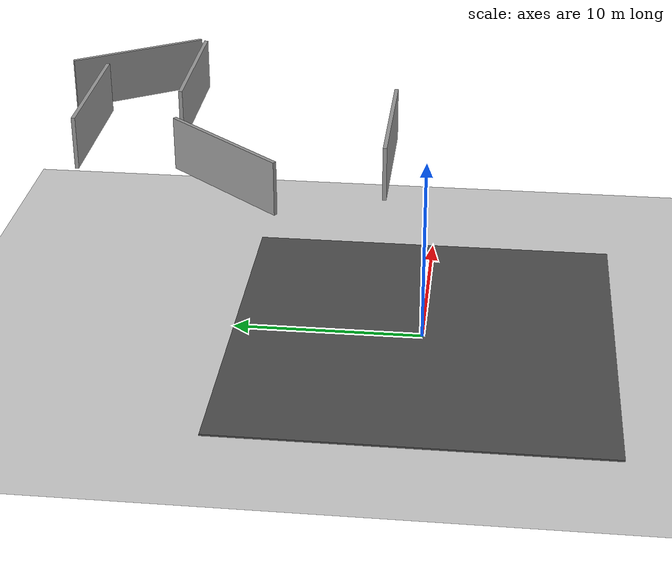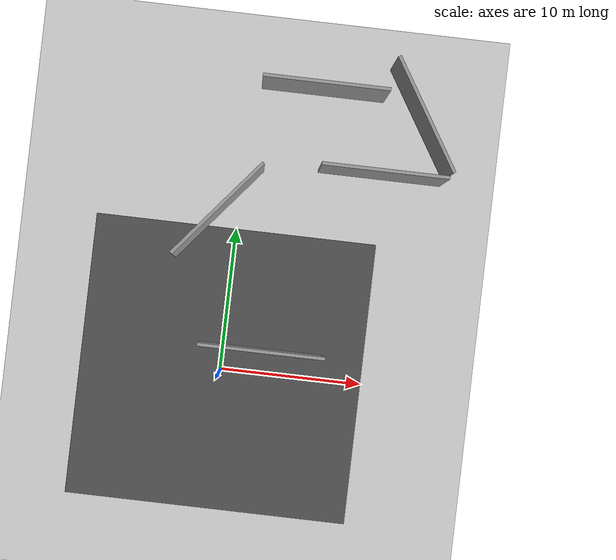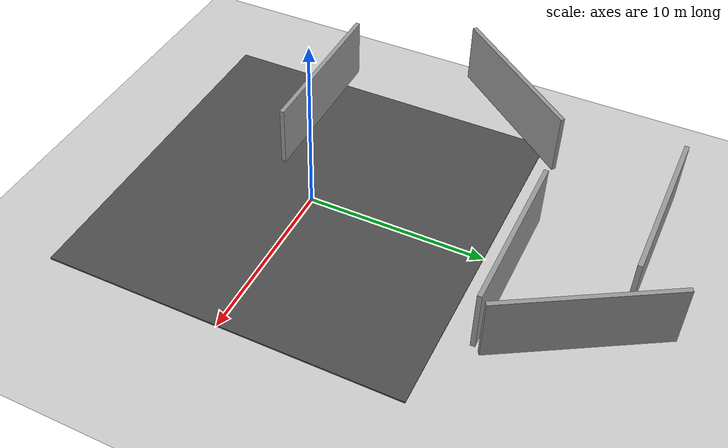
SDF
<sdf version="1.7">
 <world name="default">
  <light name="sun" type="directional">
   <pose>0 0 10 0 -0 0</pose>
   <diffuse>0.8 0.8 0.8 1</diffuse>
   <specular>0.2 0.2 0.2 1</specular>
   <attenuation>
    <range>1000</range>
    <constant>0.9</constant>
    <linear>0.01</linear>
    <quadratic>0.001</quadratic>
   </attenuation>
   <direction>-0.5 0.1 -0.9</direction>
   <spot><inner_angle>0</inner_angle><outer_angle>0</outer_angle><falloff>0</falloff></spot>
  </light>
  <model name="ground_plane">
   <static>1</static>
   <link name="link">
    <collision name="collision">
     <geometry><plane><normal>0 0 1</normal><size>100 100</size></plane></geometry>
     <surface>
      <contact><collide_bitmask>65535</collide_bitmask></contact>
      <friction><ode><mu>100</mu><mu2>50</mu2></ode></friction>
     </surface>
    </collision>
    <visual name="visual">
     <cast_shadows>0</cast_shadows>
     <geometry><plane><normal>0 0 1</normal><size>100 100</size></plane></geometry>
     <material>
      <script><uri>file://media/materials/scripts/gazebo.material</uri><name>Gazebo/Grey</name></script>
     </material>
    </visual>
   </link>
  </model>
  <model name="asphalt_plane">
   <static>1</static>
   <link name="link">
    <collision name="collision"><geometry><box><size>20 20 0.1</size></box></geometry></collision>
    <visual name="visual">
     <cast_shadows>0</cast_shadows>
     <geometry><box><size>20 20 0.1</size></box></geometry>
     <material>
      <script>
       <uri>model://asphalt_plane/materials/scripts</uri>
       <uri>model://asphalt_plane/materials/textures</uri>
       <name>vrc/asphalt</name>
      </script>
     </material>
    </visual>
   </link>
  </model>
  <physics name="default_physics" default="0" type="ode">
   <ode>
    <solver>
     <type>quick</type>
     <iters>10</iters>
     <sor>1.3</sor>
     <use_dynamic_moi_rescaling>0</use_dynamic_moi_rescaling>
    </solver>
    <constraints>
     <cfm>0</cfm>
     <erp>0.2</erp>
     <contact_max_correcting_vel>100</contact_max_correcting_vel>
     <contact_surface_layer>0.001</contact_surface_layer>
    </constraints>
   </ode>
   <max_step_size>0.004</max_step_size>
   <real_time_factor>1</real_time_factor>
   <real_time_update_rate>250</real_time_update_rate>
  </physics>
  <gravity>0 0 -9.8066</gravity>
  <magnetic_field>6e-06 2.3e-05 -4.2e-05</magnetic_field>
  <atmosphere type="adiabatic"/>
  <scene><ambient>0.4 0.4 0.4 1</ambient><background>0.7 0.7 0.7 1</background><shadows>1</shadows></scene>
  <audio><device>default</device></audio>
  <spherical_coordinates>
   <surface_model>EARTH_WGS84</surface_model>
   <latitude_deg>0</latitude_deg>
   <longitude_deg>0</longitude_deg>
   <elevation>0</elevation>
   <heading_deg>0</heading_deg>
  </spherical_coordinates>
  <model name="grey_wall">
   <static>1</static>
   <link name="link">
    <pose>0 0 1.4 0 -0 0</pose>
    <collision name="collision"><geometry><box><size>7.5 0.2 2.8</size></box></geometry></collision>
    <visual name="visual">
     <cast_shadows>0</cast_shadows>
     <geometry><box><size>7.5 0.2 2.8</size></box></geometry>
     <material>
      <script>
       <uri>model://grey_wall/materials/scripts</uri>
       <uri>model://grey_wall/materials/textures</uri>
       <name>vrc/grey_wall</name>
      </script>
     </material>
    </visual>
   </link>
   <pose>-1 10 8.5 0 -0 0.884962</pose>
  </model>
  <model name="grey_wall_0">
   <static>1</static>
   <link name="link">
    <pose>0 0 1.4 0 -0 0</pose>
    <collision name="collision"><geometry><box><size>7.5 0.2 2.8</size></box></geometry></collision>
    <visual name="visual">
     <cast_shadows>0</cast_shadows>
     <geometry><box><size>7.5 0.2 2.8</size></box></geometry>
     <material>
      <script>
       <uri>model://grey_wall/materials/scripts</uri>
       <uri>model://grey_wall/materials/textures</uri>
       <name>vrc/grey_wall</name>
      </script>
     </material>
    </visual>
   </link>
   <pose>2.5 2 8.5 0 -0 0</pose>
  </model>
  <model name="grey_wall_1">
   <static>1</static>
   <link name="link">
    <pose>0 0 1.4 0 -0 0</pose>
    <collision name="collision"><geometry><box><size>7.5 0.2 2.8</size></box></geometry></collision>
    <visual name="visual">
     <cast_shadows>0</cast_shadows>
     <geometry><box><size>7.5 0.2 2.8</size></box></geometry>
     <material>
      <script>
       <uri>model://grey_wall/materials/scripts</uri>
       <uri>model://grey_wall/materials/textures</uri>
       <name>vrc/grey_wall</name>
      </script>
     </material>
    </visual>
   </link>
   <pose>8.5 13.2877 8.5 0 -0 0</pose>
  </model>
  <model name="grey_wall_2">
   <static>1</static>
   <link name="link">
    <pose>0 0 1.4 0 -0 0</pose>
    <collision name="collision"><geometry><box><size>7.5 0.2 2.8</size></box></geometry></collision>
    <visual name="visual">
     <cast_shadows>0</cast_shadows>
     <geometry><box><size>7.5 0.2 2.8</size></box></geometry>
     <material>
      <script>
       <uri>model://grey_wall/materials/scripts</uri>
       <uri>model://grey_wall/materials/textures</uri>
       <name>vrc/grey_wall</name>
      </script>
     </material>
    </visual>
   </link>
   <pose>4.5 18 8.5 0 -0 0</pose>
  </model>
  <model name="grey_wall_3">
   <static>1</static>
   <link name="link">
    <pose>0 0 1.4 0 -0 0</pose>
    <collision name="collision"><geometry><box><size>7.5 0.2 2.8</size></box></geometry></collision>
    <visual name="visual">
     <cast_shadows>0</cast_shadows>
     <geometry><box><size>7.5 0.2 2.8</size></box></geometry>
     <material>
      <script>
       <uri>model://grey_wall/materials/scripts</uri>
       <uri>model://grey_wall/materials/textures</uri>
       <name>vrc/grey_wall</name>
      </script>
     </material>
    </visual>
   </link>
   <pose>10.4929 16.7966 8.5 0 0 -1.0177</pose>
  </model>
  <light name="user_spot_light_0" type="spot">
   <pose>19.9751 30.0421 1 0 -0 0</pose>
   <diffuse>0.5 0.5 0.5 1</diffuse>
   <specular>0.1 0.1 0.1 1</specular>
   <direction>0 0 -1</direction>
   <attenuation>
    <range>20</range>
    <constant>0.5</constant>
    <linear>0.01</linear>
    <quadratic>0.001</quadratic>
   </attenuation>
   <cast_shadows>0</cast_shadows>
   <spot><inner_angle>0.6</inner_angle><outer_angle>1</outer_angle><falloff>1</falloff></spot>
  </light>
 </world>
</sdf>
